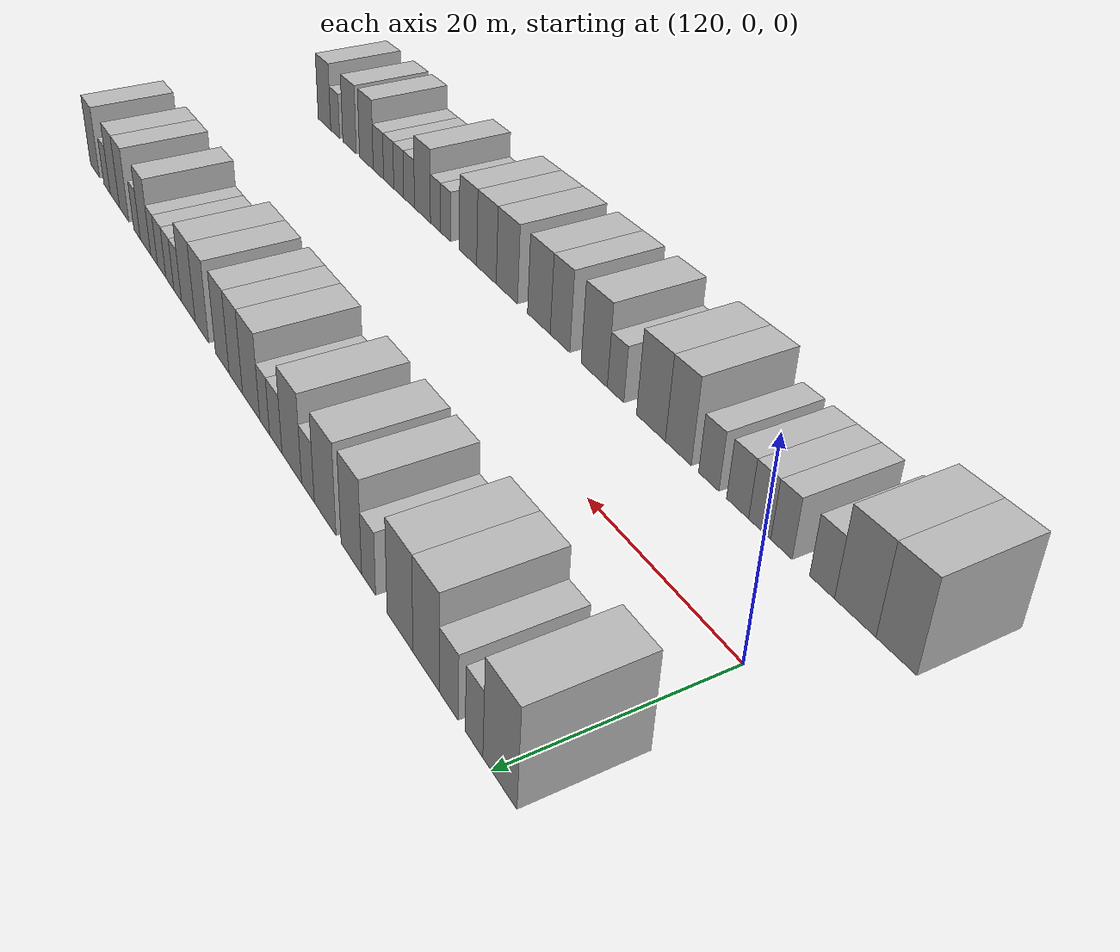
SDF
<sdf version="1.6">
 <world name="default">
  <model name="building_28">
   <static>1</static>
   <pose>118.9540 15.0000 0 0.000000 0.000000 1.570796</pose>
   <link name="link">
    <pose>0 0 4.50 0 0 0</pose>
    <collision name="collision"><geometry><box><size>10.0000 4.4151 9.0000</size></box></geometry></collision>
    <visual name="visual">
     <cast_shadows>0</cast_shadows>
     <geometry><box><size>10.0000 4.4151 9.0000</size></box></geometry>
     <material>
      <script>
       <uri>model://HANNAS_wall/materials/scripts</uri>
       <uri>model://HANNAS_wall/materials/textures</uri>
       <name>vrc/HANNAS_wall</name>
      </script>
     </material>
    </visual>
   </link>
  </model>
  <model name="building_29">
   <static>1</static>
   <pose>122.3704 15.0000 0 0.000000 0.000000 1.570796</pose>
   <link name="link">
    <pose>0 0 3.00 0 0 0</pose>
    <collision name="collision"><geometry><box><size>10.0000 2.4178 6.0000</size></box></geometry></collision>
    <visual name="visual">
     <cast_shadows>0</cast_shadows>
     <geometry><box><size>10.0000 2.4178 6.0000</size></box></geometry>
     <material>
      <script>
       <uri>model://HANNAS_wall/materials/scripts</uri>
       <uri>model://HANNAS_wall/materials/textures</uri>
       <name>vrc/HANNAS_wall</name>
      </script>
     </material>
    </visual>
   </link>
  </model>
  <model name="building_30">
   <static>1</static>
   <pose>125.9705 15.0000 0 0.000000 0.000000 1.570796</pose>
   <link name="link">
    <pose>0 0 3.00 0 0 0</pose>
    <collision name="collision"><geometry><box><size>10.0000 2.7824 6.0000</size></box></geometry></collision>
    <visual name="visual">
     <cast_shadows>0</cast_shadows>
     <geometry><box><size>10.0000 2.7824 6.0000</size></box></geometry>
     <material>
      <script>
       <uri>model://HANNAS_wall/materials/scripts</uri>
       <uri>model://HANNAS_wall/materials/textures</uri>
       <name>vrc/HANNAS_wall</name>
      </script>
     </material>
    </visual>
   </link>
  </model>
  <model name="building_31">
   <static>1</static>
   <pose>129.3902 15.0000 0 0.000000 0.000000 1.570796</pose>
   <link name="link">
    <pose>0 0 4.50 0 0 0</pose>
    <collision name="collision"><geometry><box><size>10.0000 4.0570 9.0000</size></box></geometry></collision>
    <visual name="visual">
     <cast_shadows>0</cast_shadows>
     <geometry><box><size>10.0000 4.0570 9.0000</size></box></geometry>
     <material>
      <script>
       <uri>model://HANNAS_wall/materials/scripts</uri>
       <uri>model://HANNAS_wall/materials/textures</uri>
       <name>vrc/HANNAS_wall</name>
      </script>
     </material>
    </visual>
   </link>
  </model>
  <model name="building_32">
   <static>1</static>
   <pose>133.5595 15.0000 0 0.000000 0.000000 1.570796</pose>
   <link name="link">
    <pose>0 0 4.50 0 0 0</pose>
    <collision name="collision"><geometry><box><size>10.0000 4.2816 9.0000</size></box></geometry></collision>
    <visual name="visual">
     <cast_shadows>0</cast_shadows>
     <geometry><box><size>10.0000 4.2816 9.0000</size></box></geometry>
     <material>
      <script>
       <uri>model://HANNAS_wall/materials/scripts</uri>
       <uri>model://HANNAS_wall/materials/textures</uri>
       <name>vrc/HANNAS_wall</name>
      </script>
     </material>
    </visual>
   </link>
  </model>
  <model name="building_33">
   <static>1</static>
   <pose>138.9618 15.0000 0 0.000000 0.000000 1.570796</pose>
   <link name="link">
    <pose>0 0 3.00 0 0 0</pose>
    <collision name="collision"><geometry><box><size>10.0000 2.5230 6.0000</size></box></geometry></collision>
    <visual name="visual">
     <cast_shadows>0</cast_shadows>
     <geometry><box><size>10.0000 2.5230 6.0000</size></box></geometry>
     <material>
      <script>
       <uri>model://HANNAS_wall/materials/scripts</uri>
       <uri>model://HANNAS_wall/materials/textures</uri>
       <name>vrc/HANNAS_wall</name>
      </script>
     </material>
    </visual>
   </link>
  </model>
  <model name="building_34">
   <static>1</static>
   <pose>142.1640 15.0000 0 0.000000 0.000000 1.570796</pose>
   <link name="link">
    <pose>0 0 4.50 0 0 0</pose>
    <collision name="collision"><geometry><box><size>10.0000 3.8814 9.0000</size></box></geometry></collision>
    <visual name="visual">
     <cast_shadows>0</cast_shadows>
     <geometry><box><size>10.0000 3.8814 9.0000</size></box></geometry>
     <material>
      <script>
       <uri>model://HANNAS_wall/materials/scripts</uri>
       <uri>model://HANNAS_wall/materials/textures</uri>
       <name>vrc/HANNAS_wall</name>
      </script>
     </material>
    </visual>
   </link>
  </model>
  <model name="building_35">
   <static>1</static>
   <pose>147.3182 15.0000 0 0.000000 0.000000 1.570796</pose>
   <link name="link">
    <pose>0 0 4.50 0 0 0</pose>
    <collision name="collision"><geometry><box><size>10.0000 4.4270 9.0000</size></box></geometry></collision>
    <visual name="visual">
     <cast_shadows>0</cast_shadows>
     <geometry><box><size>10.0000 4.4270 9.0000</size></box></geometry>
     <material>
      <script>
       <uri>model://HANNAS_wall/materials/scripts</uri>
       <uri>model://HANNAS_wall/materials/textures</uri>
       <name>vrc/HANNAS_wall</name>
      </script>
     </material>
    </visual>
   </link>
  </model>
  <model name="building_36">
   <static>1</static>
   <pose>150.8977 15.0000 0 0.000000 0.000000 1.570796</pose>
   <link name="link">
    <pose>0 0 3.00 0 0 0</pose>
    <collision name="collision"><geometry><box><size>10.0000 2.7321 6.0000</size></box></geometry></collision>
    <visual name="visual">
     <cast_shadows>0</cast_shadows>
     <geometry><box><size>10.0000 2.7321 6.0000</size></box></geometry>
     <material>
      <script>
       <uri>model://HANNAS_wall/materials/scripts</uri>
       <uri>model://HANNAS_wall/materials/textures</uri>
       <name>vrc/HANNAS_wall</name>
      </script>
     </material>
    </visual>
   </link>
  </model>
  <model name="building_37">
   <static>1</static>
   <pose>154.4824 15.0000 0 0.000000 0.000000 1.570796</pose>
   <link name="link">
    <pose>0 0 4.50 0 0 0</pose>
    <collision name="collision"><geometry><box><size>10.0000 4.4373 9.0000</size></box></geometry></collision>
    <visual name="visual">
     <cast_shadows>0</cast_shadows>
     <geometry><box><size>10.0000 4.4373 9.0000</size></box></geometry>
     <material>
      <script>
       <uri>model://HANNAS_wall/materials/scripts</uri>
       <uri>model://HANNAS_wall/materials/textures</uri>
       <name>vrc/HANNAS_wall</name>
      </script>
     </material>
    </visual>
   </link>
  </model>
  <model name="building_38">
   <static>1</static>
   <pose>158.1775 15.0000 0 0.000000 0.000000 1.570796</pose>
   <link name="link">
    <pose>0 0 3.00 0 0 0</pose>
    <collision name="collision"><geometry><box><size>10.0000 2.9529 6.0000</size></box></geometry></collision>
    <visual name="visual">
     <cast_shadows>0</cast_shadows>
     <geometry><box><size>10.0000 2.9529 6.0000</size></box></geometry>
     <material>
      <script>
       <uri>model://HANNAS_wall/materials/scripts</uri>
       <uri>model://HANNAS_wall/materials/textures</uri>
       <name>vrc/HANNAS_wall</name>
      </script>
     </material>
    </visual>
   </link>
  </model>
  <model name="building_39">
   <static>1</static>
   <pose>160.8714 15.0000 0 0.000000 0.000000 1.570796</pose>
   <link name="link">
    <pose>0 0 3.00 0 0 0</pose>
    <collision name="collision"><geometry><box><size>10.0000 2.4348 6.0000</size></box></geometry></collision>
    <visual name="visual">
     <cast_shadows>0</cast_shadows>
     <geometry><box><size>10.0000 2.4348 6.0000</size></box></geometry>
     <material>
      <script>
       <uri>model://HANNAS_wall/materials/scripts</uri>
       <uri>model://HANNAS_wall/materials/textures</uri>
       <name>vrc/HANNAS_wall</name>
      </script>
     </material>
    </visual>
   </link>
  </model>
  <model name="building_40">
   <static>1</static>
   <pose>164.3016 15.0000 0 0.000000 0.000000 1.570796</pose>
   <link name="link">
    <pose>0 0 4.50 0 0 0</pose>
    <collision name="collision"><geometry><box><size>10.0000 4.4256 9.0000</size></box></geometry></collision>
    <visual name="visual">
     <cast_shadows>0</cast_shadows>
     <geometry><box><size>10.0000 4.4256 9.0000</size></box></geometry>
     <material>
      <script>
       <uri>model://HANNAS_wall/materials/scripts</uri>
       <uri>model://HANNAS_wall/materials/textures</uri>
       <name>vrc/HANNAS_wall</name>
      </script>
     </material>
    </visual>
   </link>
  </model>
  <model name="building_41">
   <static>1</static>
   <pose>168.3324 15.0000 0 0.000000 0.000000 1.570796</pose>
   <link name="link">
    <pose>0 0 4.50 0 0 0</pose>
    <collision name="collision"><geometry><box><size>10.0000 3.6360 9.0000</size></box></geometry></collision>
    <visual name="visual">
     <cast_shadows>0</cast_shadows>
     <geometry><box><size>10.0000 3.6360 9.0000</size></box></geometry>
     <material>
      <script>
       <uri>model://HANNAS_wall/materials/scripts</uri>
       <uri>model://HANNAS_wall/materials/textures</uri>
       <name>vrc/HANNAS_wall</name>
      </script>
     </material>
    </visual>
   </link>
  </model>
  <model name="building_42">
   <static>1</static>
   <pose>172.1010 15.0000 0 0.000000 0.000000 1.570796</pose>
   <link name="link">
    <pose>0 0 4.50 0 0 0</pose>
    <collision name="collision"><geometry><box><size>10.0000 3.9010 9.0000</size></box></geometry></collision>
    <visual name="visual">
     <cast_shadows>0</cast_shadows>
     <geometry><box><size>10.0000 3.9010 9.0000</size></box></geometry>
     <material>
      <script>
       <uri>model://HANNAS_wall/materials/scripts</uri>
       <uri>model://HANNAS_wall/materials/textures</uri>
       <name>vrc/HANNAS_wall</name>
      </script>
     </material>
    </visual>
   </link>
  </model>
  <model name="building_43">
   <static>1</static>
   <pose>178.1021 15.0000 0 0.000000 0.000000 1.570796</pose>
   <link name="link">
    <pose>0 0 4.50 0 0 0</pose>
    <collision name="collision"><geometry><box><size>10.0000 4.1012 9.0000</size></box></geometry></collision>
    <visual name="visual">
     <cast_shadows>0</cast_shadows>
     <geometry><box><size>10.0000 4.1012 9.0000</size></box></geometry>
     <material>
      <script>
       <uri>model://HANNAS_wall/materials/scripts</uri>
       <uri>model://HANNAS_wall/materials/textures</uri>
       <name>vrc/HANNAS_wall</name>
      </script>
     </material>
    </visual>
   </link>
  </model>
  <model name="building_44">
   <static>1</static>
   <pose>182.3665 15.0000 0 0.000000 0.000000 1.570796</pose>
   <link name="link">
    <pose>0 0 4.50 0 0 0</pose>
    <collision name="collision"><geometry><box><size>10.0000 4.4276 9.0000</size></box></geometry></collision>
    <visual name="visual">
     <cast_shadows>0</cast_shadows>
     <geometry><box><size>10.0000 4.4276 9.0000</size></box></geometry>
     <material>
      <script>
       <uri>model://HANNAS_wall/materials/scripts</uri>
       <uri>model://HANNAS_wall/materials/textures</uri>
       <name>vrc/HANNAS_wall</name>
      </script>
     </material>
    </visual>
   </link>
  </model>
  <model name="building_45">
   <static>1</static>
   <pose>185.8606 15.0000 0 0.000000 0.000000 1.570796</pose>
   <link name="link">
    <pose>0 0 3.00 0 0 0</pose>
    <collision name="collision"><geometry><box><size>10.0000 2.5606 6.0000</size></box></geometry></collision>
    <visual name="visual">
     <cast_shadows>0</cast_shadows>
     <geometry><box><size>10.0000 2.5606 6.0000</size></box></geometry>
     <material>
      <script>
       <uri>model://HANNAS_wall/materials/scripts</uri>
       <uri>model://HANNAS_wall/materials/textures</uri>
       <name>vrc/HANNAS_wall</name>
      </script>
     </material>
    </visual>
   </link>
  </model>
  <model name="building_46">
   <static>1</static>
   <pose>188.5053 15.0000 0 0.000000 0.000000 1.570796</pose>
   <link name="link">
    <pose>0 0 3.00 0 0 0</pose>
    <collision name="collision"><geometry><box><size>10.0000 2.7289 6.0000</size></box></geometry></collision>
    <visual name="visual">
     <cast_shadows>0</cast_shadows>
     <geometry><box><size>10.0000 2.7289 6.0000</size></box></geometry>
     <material>
      <script>
       <uri>model://HANNAS_wall/materials/scripts</uri>
       <uri>model://HANNAS_wall/materials/textures</uri>
       <name>vrc/HANNAS_wall</name>
      </script>
     </material>
    </visual>
   </link>
  </model>
  <model name="building_47">
   <static>1</static>
   <pose>191.3675 15.0000 0 0.000000 0.000000 1.570796</pose>
   <link name="link">
    <pose>0 0 3.00 0 0 0</pose>
    <collision name="collision"><geometry><box><size>10.0000 2.9955 6.0000</size></box></geometry></collision>
    <visual name="visual">
     <cast_shadows>0</cast_shadows>
     <geometry><box><size>10.0000 2.9955 6.0000</size></box></geometry>
     <material>
      <script>
       <uri>model://HANNAS_wall/materials/scripts</uri>
       <uri>model://HANNAS_wall/materials/textures</uri>
       <name>vrc/HANNAS_wall</name>
      </script>
     </material>
    </visual>
   </link>
  </model>
  <model name="building_48">
   <static>1</static>
   <pose>194.1044 15.0000 0 0.000000 0.000000 1.570796</pose>
   <link name="link">
    <pose>0 0 3.00 0 0 0</pose>
    <collision name="collision"><geometry><box><size>10.0000 2.4783 6.0000</size></box></geometry></collision>
    <visual name="visual">
     <cast_shadows>0</cast_shadows>
     <geometry><box><size>10.0000 2.4783 6.0000</size></box></geometry>
     <material>
      <script>
       <uri>model://HANNAS_wall/materials/scripts</uri>
       <uri>model://HANNAS_wall/materials/textures</uri>
       <name>vrc/HANNAS_wall</name>
      </script>
     </material>
    </visual>
   </link>
  </model>
  <model name="building_49">
   <static>1</static>
   <pose>197.3221 15.0000 0 0.000000 0.000000 1.570796</pose>
   <link name="link">
    <pose>0 0 4.50 0 0 0</pose>
    <collision name="collision"><geometry><box><size>10.0000 3.9571 9.0000</size></box></geometry></collision>
    <visual name="visual">
     <cast_shadows>0</cast_shadows>
     <geometry><box><size>10.0000 3.9571 9.0000</size></box></geometry>
     <material>
      <script>
       <uri>model://HANNAS_wall/materials/scripts</uri>
       <uri>model://HANNAS_wall/materials/textures</uri>
       <name>vrc/HANNAS_wall</name>
      </script>
     </material>
    </visual>
   </link>
  </model>
  <model name="building_50">
   <static>1</static>
   <pose>200.5690 15.0000 0 0.000000 0.000000 1.570796</pose>
   <link name="link">
    <pose>0 0 3.00 0 0 0</pose>
    <collision name="collision"><geometry><box><size>10.0000 2.5367 6.0000</size></box></geometry></collision>
    <visual name="visual">
     <cast_shadows>0</cast_shadows>
     <geometry><box><size>10.0000 2.5367 6.0000</size></box></geometry>
     <material>
      <script>
       <uri>model://HANNAS_wall/materials/scripts</uri>
       <uri>model://HANNAS_wall/materials/textures</uri>
       <name>vrc/HANNAS_wall</name>
      </script>
     </material>
    </visual>
   </link>
  </model>
  <model name="building_51">
   <static>1</static>
   <pose>205.7570 15.0000 0 0.000000 0.000000 1.570796</pose>
   <link name="link">
    <pose>0 0 4.50 0 0 0</pose>
    <collision name="collision"><geometry><box><size>10.0000 3.8393 9.0000</size></box></geometry></collision>
    <visual name="visual">
     <cast_shadows>0</cast_shadows>
     <geometry><box><size>10.0000 3.8393 9.0000</size></box></geometry>
     <material>
      <script>
       <uri>model://HANNAS_wall/materials/scripts</uri>
       <uri>model://HANNAS_wall/materials/textures</uri>
       <name>vrc/HANNAS_wall</name>
      </script>
     </material>
    </visual>
   </link>
  </model>
  <model name="building_52">
   <static>1</static>
   <pose>209.7104 15.0000 0 0.000000 0.000000 1.570796</pose>
   <link name="link">
    <pose>0 0 4.50 0 0 0</pose>
    <collision name="collision"><geometry><box><size>10.0000 4.0676 9.0000</size></box></geometry></collision>
    <visual name="visual">
     <cast_shadows>0</cast_shadows>
     <geometry><box><size>10.0000 4.0676 9.0000</size></box></geometry>
     <material>
      <script>
       <uri>model://HANNAS_wall/materials/scripts</uri>
       <uri>model://HANNAS_wall/materials/textures</uri>
       <name>vrc/HANNAS_wall</name>
      </script>
     </material>
    </visual>
   </link>
  </model>
  <model name="building_53">
   <static>1</static>
   <pose>213.1324 15.0000 0 0.000000 0.000000 1.570796</pose>
   <link name="link">
    <pose>0 0 3.00 0 0 0</pose>
    <collision name="collision"><geometry><box><size>10.0000 2.7764 6.0000</size></box></geometry></collision>
    <visual name="visual">
     <cast_shadows>0</cast_shadows>
     <geometry><box><size>10.0000 2.7764 6.0000</size></box></geometry>
     <material>
      <script>
       <uri>model://HANNAS_wall/materials/scripts</uri>
       <uri>model://HANNAS_wall/materials/textures</uri>
       <name>vrc/HANNAS_wall</name>
      </script>
     </material>
    </visual>
   </link>
  </model>
  <model name="building_54">
   <static>1</static>
   <pose>218.6330 15.0000 0 0.000000 0.000000 1.570796</pose>
   <link name="link">
    <pose>0 0 4.50 0 0 0</pose>
    <collision name="collision"><geometry><box><size>10.0000 4.2248 9.0000</size></box></geometry></collision>
    <visual name="visual">
     <cast_shadows>0</cast_shadows>
     <geometry><box><size>10.0000 4.2248 9.0000</size></box></geometry>
     <material>
      <script>
       <uri>model://HANNAS_wall/materials/scripts</uri>
       <uri>model://HANNAS_wall/materials/textures</uri>
       <name>vrc/HANNAS_wall</name>
      </script>
     </material>
    </visual>
   </link>
  </model>
  <model name="building_81">
   <static>1</static>
   <pose>115.7610 -15.0000 0 0.000000 0.000000 1.570796</pose>
   <link name="link">
    <pose>0 0 4.50 0 0 0</pose>
    <collision name="collision"><geometry><box><size>10.0000 4.0083 9.0000</size></box></geometry></collision>
    <visual name="visual">
     <cast_shadows>0</cast_shadows>
     <geometry><box><size>10.0000 4.0083 9.0000</size></box></geometry>
     <material>
      <script>
       <uri>model://HANNAS_wall/materials/scripts</uri>
       <uri>model://HANNAS_wall/materials/textures</uri>
       <name>vrc/HANNAS_wall</name>
      </script>
     </material>
    </visual>
   </link>
  </model>
  <model name="building_82">
   <static>1</static>
   <pose>119.9361 -15.0000 0 0.000000 0.000000 1.570796</pose>
   <link name="link">
    <pose>0 0 4.50 0 0 0</pose>
    <collision name="collision"><geometry><box><size>10.0000 4.3418 9.0000</size></box></geometry></collision>
    <visual name="visual">
     <cast_shadows>0</cast_shadows>
     <geometry><box><size>10.0000 4.3418 9.0000</size></box></geometry>
     <material>
      <script>
       <uri>model://HANNAS_wall/materials/scripts</uri>
       <uri>model://HANNAS_wall/materials/textures</uri>
       <name>vrc/HANNAS_wall</name>
      </script>
     </material>
    </visual>
   </link>
  </model>
  <model name="building_83">
   <static>1</static>
   <pose>123.4772 -15.0000 0 0.000000 0.000000 1.570796</pose>
   <link name="link">
    <pose>0 0 3.00 0 0 0</pose>
    <collision name="collision"><geometry><box><size>10.0000 2.7404 6.0000</size></box></geometry></collision>
    <visual name="visual">
     <cast_shadows>0</cast_shadows>
     <geometry><box><size>10.0000 2.7404 6.0000</size></box></geometry>
     <material>
      <script>
       <uri>model://HANNAS_wall/materials/scripts</uri>
       <uri>model://HANNAS_wall/materials/textures</uri>
       <name>vrc/HANNAS_wall</name>
      </script>
     </material>
    </visual>
   </link>
  </model>
  <model name="building_84">
   <static>1</static>
   <pose>128.1150 -15.0000 0 0.000000 0.000000 1.570796</pose>
   <link name="link">
    <pose>0 0 3.00 0 0 0</pose>
    <collision name="collision"><geometry><box><size>10.0000 2.5353 6.0000</size></box></geometry></collision>
    <visual name="visual">
     <cast_shadows>0</cast_shadows>
     <geometry><box><size>10.0000 2.5353 6.0000</size></box></geometry>
     <material>
      <script>
       <uri>model://HANNAS_wall/materials/scripts</uri>
       <uri>model://HANNAS_wall/materials/textures</uri>
       <name>vrc/HANNAS_wall</name>
      </script>
     </material>
    </visual>
   </link>
  </model>
  <model name="building_85">
   <static>1</static>
   <pose>130.7493 -15.0000 0 0.000000 0.000000 1.570796</pose>
   <link name="link">
    <pose>0 0 3.00 0 0 0</pose>
    <collision name="collision"><geometry><box><size>10.0000 2.7333 6.0000</size></box></geometry></collision>
    <visual name="visual">
     <cast_shadows>0</cast_shadows>
     <geometry><box><size>10.0000 2.7333 6.0000</size></box></geometry>
     <material>
      <script>
       <uri>model://HANNAS_wall/materials/scripts</uri>
       <uri>model://HANNAS_wall/materials/textures</uri>
       <name>vrc/HANNAS_wall</name>
      </script>
     </material>
    </visual>
   </link>
  </model>
  <model name="building_86">
   <static>1</static>
   <pose>133.5339 -15.0000 0 0.000000 0.000000 1.570796</pose>
   <link name="link">
    <pose>0 0 3.00 0 0 0</pose>
    <collision name="collision"><geometry><box><size>10.0000 2.8359 6.0000</size></box></geometry></collision>
    <visual name="visual">
     <cast_shadows>0</cast_shadows>
     <geometry><box><size>10.0000 2.8359 6.0000</size></box></geometry>
     <material>
      <script>
       <uri>model://HANNAS_wall/materials/scripts</uri>
       <uri>model://HANNAS_wall/materials/textures</uri>
       <name>vrc/HANNAS_wall</name>
      </script>
     </material>
    </visual>
   </link>
  </model>
  <model name="building_87">
   <static>1</static>
   <pose>137.3335 -15.0000 0 0.000000 0.000000 1.570796</pose>
   <link name="link">
    <pose>0 0 3.00 0 0 0</pose>
    <collision name="collision"><geometry><box><size>10.0000 2.7633 6.0000</size></box></geometry></collision>
    <visual name="visual">
     <cast_shadows>0</cast_shadows>
     <geometry><box><size>10.0000 2.7633 6.0000</size></box></geometry>
     <material>
      <script>
       <uri>model://HANNAS_wall/materials/scripts</uri>
       <uri>model://HANNAS_wall/materials/textures</uri>
       <name>vrc/HANNAS_wall</name>
      </script>
     </material>
    </visual>
   </link>
  </model>
  <model name="building_88">
   <static>1</static>
   <pose>141.5861 -15.0000 0 0.000000 0.000000 1.570796</pose>
   <link name="link">
    <pose>0 0 4.50 0 0 0</pose>
    <collision name="collision"><geometry><box><size>10.0000 3.7418 9.0000</size></box></geometry></collision>
    <visual name="visual">
     <cast_shadows>0</cast_shadows>
     <geometry><box><size>10.0000 3.7418 9.0000</size></box></geometry>
     <material>
      <script>
       <uri>model://HANNAS_wall/materials/scripts</uri>
       <uri>model://HANNAS_wall/materials/textures</uri>
       <name>vrc/HANNAS_wall</name>
      </script>
     </material>
    </visual>
   </link>
  </model>
  <model name="building_89">
   <static>1</static>
   <pose>145.6412 -15.0000 0 0.000000 0.000000 1.570796</pose>
   <link name="link">
    <pose>0 0 4.50 0 0 0</pose>
    <collision name="collision"><geometry><box><size>10.0000 4.3685 9.0000</size></box></geometry></collision>
    <visual name="visual">
     <cast_shadows>0</cast_shadows>
     <geometry><box><size>10.0000 4.3685 9.0000</size></box></geometry>
     <material>
      <script>
       <uri>model://HANNAS_wall/materials/scripts</uri>
       <uri>model://HANNAS_wall/materials/textures</uri>
       <name>vrc/HANNAS_wall</name>
      </script>
     </material>
    </visual>
   </link>
  </model>
  <model name="building_90">
   <static>1</static>
   <pose>151.1725 -15.0000 0 0.000000 0.000000 1.570796</pose>
   <link name="link">
    <pose>0 0 3.00 0 0 0</pose>
    <collision name="collision"><geometry><box><size>10.0000 2.6941 6.0000</size></box></geometry></collision>
    <visual name="visual">
     <cast_shadows>0</cast_shadows>
     <geometry><box><size>10.0000 2.6941 6.0000</size></box></geometry>
     <material>
      <script>
       <uri>model://HANNAS_wall/materials/scripts</uri>
       <uri>model://HANNAS_wall/materials/textures</uri>
       <name>vrc/HANNAS_wall</name>
      </script>
     </material>
    </visual>
   </link>
  </model>
  <model name="building_91">
   <static>1</static>
   <pose>154.7453 -15.0000 0 0.000000 0.000000 1.570796</pose>
   <link name="link">
    <pose>0 0 4.50 0 0 0</pose>
    <collision name="collision"><geometry><box><size>10.0000 4.4514 9.0000</size></box></geometry></collision>
    <visual name="visual">
     <cast_shadows>0</cast_shadows>
     <geometry><box><size>10.0000 4.4514 9.0000</size></box></geometry>
     <material>
      <script>
       <uri>model://HANNAS_wall/materials/scripts</uri>
       <uri>model://HANNAS_wall/materials/textures</uri>
       <name>vrc/HANNAS_wall</name>
      </script>
     </material>
    </visual>
   </link>
  </model>
  <model name="building_92">
   <static>1</static>
   <pose>160.7732 -15.0000 0 0.000000 0.000000 1.570796</pose>
   <link name="link">
    <pose>0 0 4.50 0 0 0</pose>
    <collision name="collision"><geometry><box><size>10.0000 3.6044 9.0000</size></box></geometry></collision>
    <visual name="visual">
     <cast_shadows>0</cast_shadows>
     <geometry><box><size>10.0000 3.6044 9.0000</size></box></geometry>
     <material>
      <script>
       <uri>model://HANNAS_wall/materials/scripts</uri>
       <uri>model://HANNAS_wall/materials/textures</uri>
       <name>vrc/HANNAS_wall</name>
      </script>
     </material>
    </visual>
   </link>
  </model>
  <model name="building_93">
   <static>1</static>
   <pose>164.7481 -15.0000 0 0.000000 0.000000 1.570796</pose>
   <link name="link">
    <pose>0 0 4.50 0 0 0</pose>
    <collision name="collision"><geometry><box><size>10.0000 4.3454 9.0000</size></box></geometry></collision>
    <visual name="visual">
     <cast_shadows>0</cast_shadows>
     <geometry><box><size>10.0000 4.3454 9.0000</size></box></geometry>
     <material>
      <script>
       <uri>model://HANNAS_wall/materials/scripts</uri>
       <uri>model://HANNAS_wall/materials/textures</uri>
       <name>vrc/HANNAS_wall</name>
      </script>
     </material>
    </visual>
   </link>
  </model>
  <model name="building_94">
   <static>1</static>
   <pose>171.1209 -15.0000 0 0.000000 0.000000 1.570796</pose>
   <link name="link">
    <pose>0 0 4.50 0 0 0</pose>
    <collision name="collision"><geometry><box><size>10.0000 4.4004 9.0000</size></box></geometry></collision>
    <visual name="visual">
     <cast_shadows>0</cast_shadows>
     <geometry><box><size>10.0000 4.4004 9.0000</size></box></geometry>
     <material>
      <script>
       <uri>model://HANNAS_wall/materials/scripts</uri>
       <uri>model://HANNAS_wall/materials/textures</uri>
       <name>vrc/HANNAS_wall</name>
      </script>
     </material>
    </visual>
   </link>
  </model>
  <model name="building_95">
   <static>1</static>
   <pose>175.4441 -15.0000 0 0.000000 0.000000 1.570796</pose>
   <link name="link">
    <pose>0 0 4.50 0 0 0</pose>
    <collision name="collision"><geometry><box><size>10.0000 4.2459 9.0000</size></box></geometry></collision>
    <visual name="visual">
     <cast_shadows>0</cast_shadows>
     <geometry><box><size>10.0000 4.2459 9.0000</size></box></geometry>
     <material>
      <script>
       <uri>model://HANNAS_wall/materials/scripts</uri>
       <uri>model://HANNAS_wall/materials/textures</uri>
       <name>vrc/HANNAS_wall</name>
      </script>
     </material>
    </visual>
   </link>
  </model>
  <model name="building_96">
   <static>1</static>
   <pose>179.5576 -15.0000 0 0.000000 0.000000 1.570796</pose>
   <link name="link">
    <pose>0 0 4.50 0 0 0</pose>
    <collision name="collision"><geometry><box><size>10.0000 3.9812 9.0000</size></box></geometry></collision>
    <visual name="visual">
     <cast_shadows>0</cast_shadows>
     <geometry><box><size>10.0000 3.9812 9.0000</size></box></geometry>
     <material>
      <script>
       <uri>model://HANNAS_wall/materials/scripts</uri>
       <uri>model://HANNAS_wall/materials/textures</uri>
       <name>vrc/HANNAS_wall</name>
      </script>
     </material>
    </visual>
   </link>
  </model>
  <model name="building_97">
   <static>1</static>
   <pose>184.7584 -15.0000 0 0.000000 0.000000 1.570796</pose>
   <link name="link">
    <pose>0 0 3.00 0 0 0</pose>
    <collision name="collision"><geometry><box><size>10.0000 2.4204 6.0000</size></box></geometry></collision>
    <visual name="visual">
     <cast_shadows>0</cast_shadows>
     <geometry><box><size>10.0000 2.4204 6.0000</size></box></geometry>
     <material>
      <script>
       <uri>model://HANNAS_wall/materials/scripts</uri>
       <uri>model://HANNAS_wall/materials/textures</uri>
       <name>vrc/HANNAS_wall</name>
      </script>
     </material>
    </visual>
   </link>
  </model>
  <model name="building_98">
   <static>1</static>
   <pose>187.1974 -15.0000 0 0.000000 0.000000 1.570796</pose>
   <link name="link">
    <pose>0 0 3.00 0 0 0</pose>
    <collision name="collision"><geometry><box><size>10.0000 2.4575 6.0000</size></box></geometry></collision>
    <visual name="visual">
     <cast_shadows>0</cast_shadows>
     <geometry><box><size>10.0000 2.4575 6.0000</size></box></geometry>
     <material>
      <script>
       <uri>model://HANNAS_wall/materials/scripts</uri>
       <uri>model://HANNAS_wall/materials/textures</uri>
       <name>vrc/HANNAS_wall</name>
      </script>
     </material>
    </visual>
   </link>
  </model>
  <model name="building_99">
   <static>1</static>
   <pose>190.4709 -15.0000 0 0.000000 0.000000 1.570796</pose>
   <link name="link">
    <pose>0 0 4.50 0 0 0</pose>
    <collision name="collision"><geometry><box><size>10.0000 4.0895 9.0000</size></box></geometry></collision>
    <visual name="visual">
     <cast_shadows>0</cast_shadows>
     <geometry><box><size>10.0000 4.0895 9.0000</size></box></geometry>
     <material>
      <script>
       <uri>model://HANNAS_wall/materials/scripts</uri>
       <uri>model://HANNAS_wall/materials/textures</uri>
       <name>vrc/HANNAS_wall</name>
      </script>
     </material>
    </visual>
   </link>
  </model>
  <model name="building_100">
   <static>1</static>
   <pose>193.9306 -15.0000 0 0.000000 0.000000 1.570796</pose>
   <link name="link">
    <pose>0 0 3.00 0 0 0</pose>
    <collision name="collision"><geometry><box><size>10.0000 2.8299 6.0000</size></box></geometry></collision>
    <visual name="visual">
     <cast_shadows>0</cast_shadows>
     <geometry><box><size>10.0000 2.8299 6.0000</size></box></geometry>
     <material>
      <script>
       <uri>model://HANNAS_wall/materials/scripts</uri>
       <uri>model://HANNAS_wall/materials/textures</uri>
       <name>vrc/HANNAS_wall</name>
      </script>
     </material>
    </visual>
   </link>
  </model>
  <model name="building_101">
   <static>1</static>
   <pose>196.6816 -15.0000 0 0.000000 0.000000 1.570796</pose>
   <link name="link">
    <pose>0 0 3.00 0 0 0</pose>
    <collision name="collision"><geometry><box><size>10.0000 2.6722 6.0000</size></box></geometry></collision>
    <visual name="visual">
     <cast_shadows>0</cast_shadows>
     <geometry><box><size>10.0000 2.6722 6.0000</size></box></geometry>
     <material>
      <script>
       <uri>model://HANNAS_wall/materials/scripts</uri>
       <uri>model://HANNAS_wall/materials/textures</uri>
       <name>vrc/HANNAS_wall</name>
      </script>
     </material>
    </visual>
   </link>
  </model>
  <model name="building_102">
   <static>1</static>
   <pose>199.4303 -15.0000 0 0.000000 0.000000 1.570796</pose>
   <link name="link">
    <pose>0 0 3.00 0 0 0</pose>
    <collision name="collision"><geometry><box><size>10.0000 2.8252 6.0000</size></box></geometry></collision>
    <visual name="visual">
     <cast_shadows>0</cast_shadows>
     <geometry><box><size>10.0000 2.8252 6.0000</size></box></geometry>
     <material>
      <script>
       <uri>model://HANNAS_wall/materials/scripts</uri>
       <uri>model://HANNAS_wall/materials/textures</uri>
       <name>vrc/HANNAS_wall</name>
      </script>
     </material>
    </visual>
   </link>
  </model>
  <model name="building_103">
   <static>1</static>
   <pose>202.3240 -15.0000 0 0.000000 0.000000 1.570796</pose>
   <link name="link">
    <pose>0 0 3.00 0 0 0</pose>
    <collision name="collision"><geometry><box><size>10.0000 2.9621 6.0000</size></box></geometry></collision>
    <visual name="visual">
     <cast_shadows>0</cast_shadows>
     <geometry><box><size>10.0000 2.9621 6.0000</size></box></geometry>
     <material>
      <script>
       <uri>model://HANNAS_wall/materials/scripts</uri>
       <uri>model://HANNAS_wall/materials/textures</uri>
       <name>vrc/HANNAS_wall</name>
      </script>
     </material>
    </visual>
   </link>
  </model>
  <model name="building_104">
   <static>1</static>
   <pose>205.8178 -15.0000 0 0.000000 0.000000 1.570796</pose>
   <link name="link">
    <pose>0 0 4.50 0 0 0</pose>
    <collision name="collision"><geometry><box><size>10.0000 4.0257 9.0000</size></box></geometry></collision>
    <visual name="visual">
     <cast_shadows>0</cast_shadows>
     <geometry><box><size>10.0000 4.0257 9.0000</size></box></geometry>
     <material>
      <script>
       <uri>model://HANNAS_wall/materials/scripts</uri>
       <uri>model://HANNAS_wall/materials/textures</uri>
       <name>vrc/HANNAS_wall</name>
      </script>
     </material>
    </visual>
   </link>
  </model>
  <model name="building_105">
   <static>1</static>
   <pose>210.9111 -15.0000 0 0.000000 0.000000 1.570796</pose>
   <link name="link">
    <pose>0 0 4.50 0 0 0</pose>
    <collision name="collision"><geometry><box><size>10.0000 4.1608 9.0000</size></box></geometry></collision>
    <visual name="visual">
     <cast_shadows>0</cast_shadows>
     <geometry><box><size>10.0000 4.1608 9.0000</size></box></geometry>
     <material>
      <script>
       <uri>model://HANNAS_wall/materials/scripts</uri>
       <uri>model://HANNAS_wall/materials/textures</uri>
       <name>vrc/HANNAS_wall</name>
      </script>
     </material>
    </visual>
   </link>
  </model>
  <model name="building_106">
   <static>1</static>
   <pose>215.4306 -15.0000 0 0.000000 0.000000 1.570796</pose>
   <link name="link">
    <pose>0 0 3.00 0 0 0</pose>
    <collision name="collision"><geometry><box><size>10.0000 2.8783 6.0000</size></box></geometry></collision>
    <visual name="visual">
     <cast_shadows>0</cast_shadows>
     <geometry><box><size>10.0000 2.8783 6.0000</size></box></geometry>
     <material>
      <script>
       <uri>model://HANNAS_wall/materials/scripts</uri>
       <uri>model://HANNAS_wall/materials/textures</uri>
       <name>vrc/HANNAS_wall</name>
      </script>
     </material>
    </visual>
   </link>
  </model>
  <model name="building_107">
   <static>1</static>
   <pose>218.9368 -15.0000 0 0.000000 0.000000 1.570796</pose>
   <link name="link">
    <pose>0 0 4.50 0 0 0</pose>
    <collision name="collision"><geometry><box><size>10.0000 4.1341 9.0000</size></box></geometry></collision>
    <visual name="visual">
     <cast_shadows>0</cast_shadows>
     <geometry><box><size>10.0000 4.1341 9.0000</size></box></geometry>
     <material>
      <script>
       <uri>model://HANNAS_wall/materials/scripts</uri>
       <uri>model://HANNAS_wall/materials/textures</uri>
       <name>vrc/HANNAS_wall</name>
      </script>
     </material>
    </visual>
   </link>
  </model>
 </world>
</sdf>
